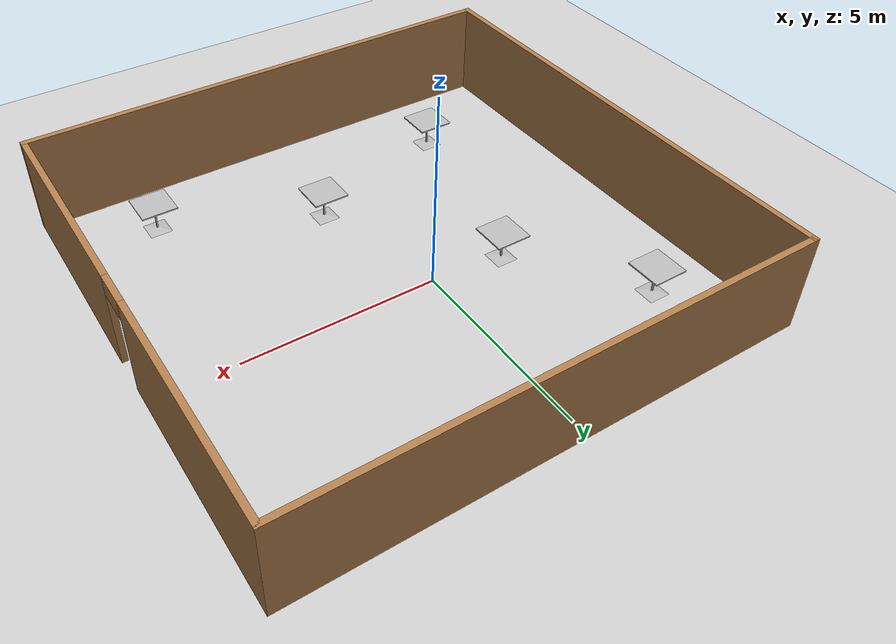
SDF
<sdf version="1.7">
 <world name="default">
  <light name="sun" type="directional">
   <pose>0 0 10 0 -0 0</pose>
   <diffuse>0.8 0.8 0.8 1</diffuse>
   <specular>0.2 0.2 0.2 1</specular>
   <attenuation>
    <range>1000</range>
    <constant>0.9</constant>
    <linear>0.01</linear>
    <quadratic>0.001</quadratic>
   </attenuation>
   <direction>-0.5 0.1 -0.9</direction>
   <spot><inner_angle>0</inner_angle><outer_angle>0</outer_angle><falloff>0</falloff></spot>
  </light>
  <model name="ground_plane">
   <static>1</static>
   <link name="link">
    <collision name="collision">
     <geometry><plane><normal>0 0 1</normal><size>100 100</size></plane></geometry>
     <surface><friction><ode><mu>100</mu><mu2>50</mu2></ode></friction></surface>
    </collision>
    <visual name="visual">
     <cast_shadows>0</cast_shadows>
     <geometry><plane><normal>0 0 1</normal><size>100 100</size></plane></geometry>
     <material>
      <script><uri>file://media/materials/scripts/gazebo.material</uri><name>Gazebo/Grey</name></script>
     </material>
    </visual>
   </link>
  </model>
  <gravity>0 0 -9.8</gravity>
  <magnetic_field>6e-06 2.3e-05 -4.2e-05</magnetic_field>
  <atmosphere type="adiabatic"/>
  <physics type="ode">
   <max_step_size>0.001</max_step_size>
   <real_time_factor>1</real_time_factor>
   <real_time_update_rate>1000</real_time_update_rate>
  </physics>
  <scene><ambient>0.4 0.4 0.4 1</ambient><background>0.7 0.7 0.7 1</background><shadows>1</shadows></scene>
  <audio><device>default</device></audio>
  <spherical_coordinates>
   <surface_model>EARTH_WGS84</surface_model>
   <latitude_deg>0</latitude_deg>
   <longitude_deg>0</longitude_deg>
   <elevation>0</elevation>
   <heading_deg>0</heading_deg>
  </spherical_coordinates>
  <model name="my_restaurant">
   <pose>0.602231 -0.753193 0 0 -0 0</pose>
   <link name="Wall_13">
    <collision name="Wall_13_Collision">
     <geometry><box><size>12.5 0.15 2.5</size></box></geometry>
     <pose>0 0 1.25 0 -0 0</pose>
    </collision>
    <visual name="Wall_13_Visual">
     <pose>0 0 1.25 0 -0 0</pose>
     <geometry><box><size>12.5 0.15 2.5</size></box></geometry>
     <material>
      <script><uri>file://media/materials/scripts/gazebo.material</uri><name>Gazebo/Wood</name></script>
      <ambient>1 1 1 1</ambient>
     </material>
     <meta><layer>0</layer></meta>
    </visual>
    <pose>-6.425 0 0 0 -0 -1.5708</pose>
   </link>
   <link name="Wall_14">
    <collision name="Wall_14_Collision">
     <geometry><box><size>13 0.15 2.5</size></box></geometry>
     <pose>0 0 1.25 0 -0 0</pose>
    </collision>
    <visual name="Wall_14_Visual">
     <pose>0 0 1.25 0 -0 0</pose>
     <geometry><box><size>13 0.15 2.5</size></box></geometry>
     <material>
      <script><uri>file://media/materials/scripts/gazebo.material</uri><name>Gazebo/Wood</name></script>
      <ambient>1 1 1 1</ambient>
     </material>
     <meta><layer>0</layer></meta>
    </visual>
    <pose>0 -6.175 0 0 -0 0</pose>
   </link>
   <link name="Wall_17">
    <collision name="Wall_17_Collision">
     <geometry><box><size>13 0.15 2.5</size></box></geometry>
     <pose>0 0 1.25 0 -0 0</pose>
    </collision>
    <visual name="Wall_17_Visual">
     <pose>0 0 1.25 0 -0 0</pose>
     <geometry><box><size>13 0.15 2.5</size></box></geometry>
     <material>
      <script><uri>file://media/materials/scripts/gazebo.material</uri><name>Gazebo/Wood</name></script>
      <ambient>1 1 1 1</ambient>
     </material>
     <meta><layer>0</layer></meta>
    </visual>
    <pose>0 6.175 0 0 -0 0</pose>
   </link>
   <link name="Wall_18">
    <pose>6.425 0 0 0 -0 -1.5708</pose>
    <visual name="Wall_18_Visual_0">
     <pose>-3.2541 0 1.25 0 -0 0</pose>
     <geometry><box><size>5.9918 0.15 2.5</size></box></geometry>
     <material>
      <script><uri>file://media/materials/scripts/gazebo.material</uri><name>Gazebo/Wood</name></script>
      <ambient>1 1 1 1</ambient>
     </material>
     <meta><layer>0</layer></meta>
    </visual>
    <collision name="Wall_18_Collision_0">
     <geometry><box><size>5.9918 0.15 2.5</size></box></geometry>
     <pose>-3.2541 0 1.25 0 -0 0</pose>
    </collision>
    <visual name="Wall_18_Visual_1">
     <pose>3.4459 0 1.25 0 -0 0</pose>
     <geometry><box><size>5.6082 0.15 2.5</size></box></geometry>
     <material>
      <script><uri>file://media/materials/scripts/gazebo.material</uri><name>Gazebo/Wood</name></script>
      <ambient>1 1 1 1</ambient>
     </material>
     <meta><layer>0</layer></meta>
    </visual>
    <collision name="Wall_18_Collision_1">
     <geometry><box><size>5.6082 0.15 2.5</size></box></geometry>
     <pose>3.4459 0 1.25 0 -0 0</pose>
    </collision>
    <visual name="Wall_18_Visual_2">
     <pose>0.191798 0 2.25 0 -0 0</pose>
     <geometry><box><size>0.9 0.15 0.5</size></box></geometry>
     <material>
      <script><uri>file://media/materials/scripts/gazebo.material</uri><name>Gazebo/Wood</name></script>
      <ambient>1 1 1 1</ambient>
     </material>
     <meta><layer>0</layer></meta>
    </visual>
    <collision name="Wall_18_Collision_2">
     <geometry><box><size>0.9 0.15 0.5</size></box></geometry>
     <pose>0.191798 0 2.25 0 -0 0</pose>
    </collision>
   </link>
   <static>1</static>
  </model>
  <model name="cafe_table">
   <static>1</static>
   <link name="link">
    <collision name="surface">
     <pose>0 0 0.755 0 -0 0</pose>
     <geometry><box><size>0.913 0.913 0.04</size></box></geometry>
    </collision>
    <collision name="column">
     <pose>0 0 0.37 0 -0 0</pose>
     <geometry><box><size>0.042 0.042 0.74</size></box></geometry>
    </collision>
    <collision name="base">
     <pose>0 0 0.02 0 -0 0</pose>
     <geometry><box><size>0.56 0.56 0.04</size></box></geometry>
    </collision>
    <visual name="visual">
     <geometry><mesh><uri>model://cafe_table/meshes/cafe_table.dae</uri></mesh></geometry>
    </visual>
   </link>
   <pose>-4.07229 3.02601 0 0 -0 0</pose>
  </model>
  <model name="cafe_table_0">
   <static>1</static>
   <link name="link">
    <collision name="surface">
     <pose>0 0 0.755 0 -0 0</pose>
     <geometry><box><size>0.913 0.913 0.04</size></box></geometry>
    </collision>
    <collision name="column">
     <pose>0 0 0.37 0 -0 0</pose>
     <geometry><box><size>0.042 0.042 0.74</size></box></geometry>
    </collision>
    <collision name="base">
     <pose>0 0 0.02 0 -0 0</pose>
     <geometry><box><size>0.56 0.56 0.04</size></box></geometry>
    </collision>
    <visual name="visual">
     <geometry><mesh><uri>model://cafe_table/meshes/cafe_table.dae</uri></mesh></geometry>
    </visual>
   </link>
   <pose>-1.8719 0.153729 0 0 -0 0</pose>
  </model>
  <model name="cafe_table_1">
   <static>1</static>
   <link name="link">
    <collision name="surface">
     <pose>0 0 0.755 0 -0 0</pose>
     <geometry><box><size>0.913 0.913 0.04</size></box></geometry>
    </collision>
    <collision name="column">
     <pose>0 0 0.37 0 -0 0</pose>
     <geometry><box><size>0.042 0.042 0.74</size></box></geometry>
    </collision>
    <collision name="base">
     <pose>0 0 0.02 0 -0 0</pose>
     <geometry><box><size>0.56 0.56 0.04</size></box></geometry>
    </collision>
    <visual name="visual">
     <geometry><mesh><uri>model://cafe_table/meshes/cafe_table.dae</uri></mesh></geometry>
    </visual>
   </link>
   <pose>-3.08512 -4.88572 0 0 -0 0</pose>
  </model>
  <model name="cafe_table_2">
   <static>1</static>
   <link name="link">
    <collision name="surface">
     <pose>0 0 0.755 0 -0 0</pose>
     <geometry><box><size>0.913 0.913 0.04</size></box></geometry>
    </collision>
    <collision name="column">
     <pose>0 0 0.37 0 -0 0</pose>
     <geometry><box><size>0.042 0.042 0.74</size></box></geometry>
    </collision>
    <collision name="base">
     <pose>0 0 0.02 0 -0 0</pose>
     <geometry><box><size>0.56 0.56 0.04</size></box></geometry>
    </collision>
    <visual name="visual">
     <geometry><mesh><uri>model://cafe_table/meshes/cafe_table.dae</uri></mesh></geometry>
    </visual>
   </link>
   <pose>0.943263 -3.53318 0 0 -0 0</pose>
  </model>
  <model name="cafe_table_3">
   <static>1</static>
   <link name="link">
    <collision name="surface">
     <pose>0 0 0.755 0 -0 0</pose>
     <geometry><box><size>0.913 0.913 0.04</size></box></geometry>
    </collision>
    <collision name="column">
     <pose>0 0 0.37 0 -0 0</pose>
     <geometry><box><size>0.042 0.042 0.74</size></box></geometry>
    </collision>
    <collision name="base">
     <pose>0 0 0.02 0 -0 0</pose>
     <geometry><box><size>0.56 0.56 0.04</size></box></geometry>
    </collision>
    <visual name="visual">
     <geometry><mesh><uri>model://cafe_table/meshes/cafe_table.dae</uri></mesh></geometry>
    </visual>
   </link>
   <pose>4.71853 -5.31903 0 0 -0 0</pose>
  </model>
 </world>
</sdf>
